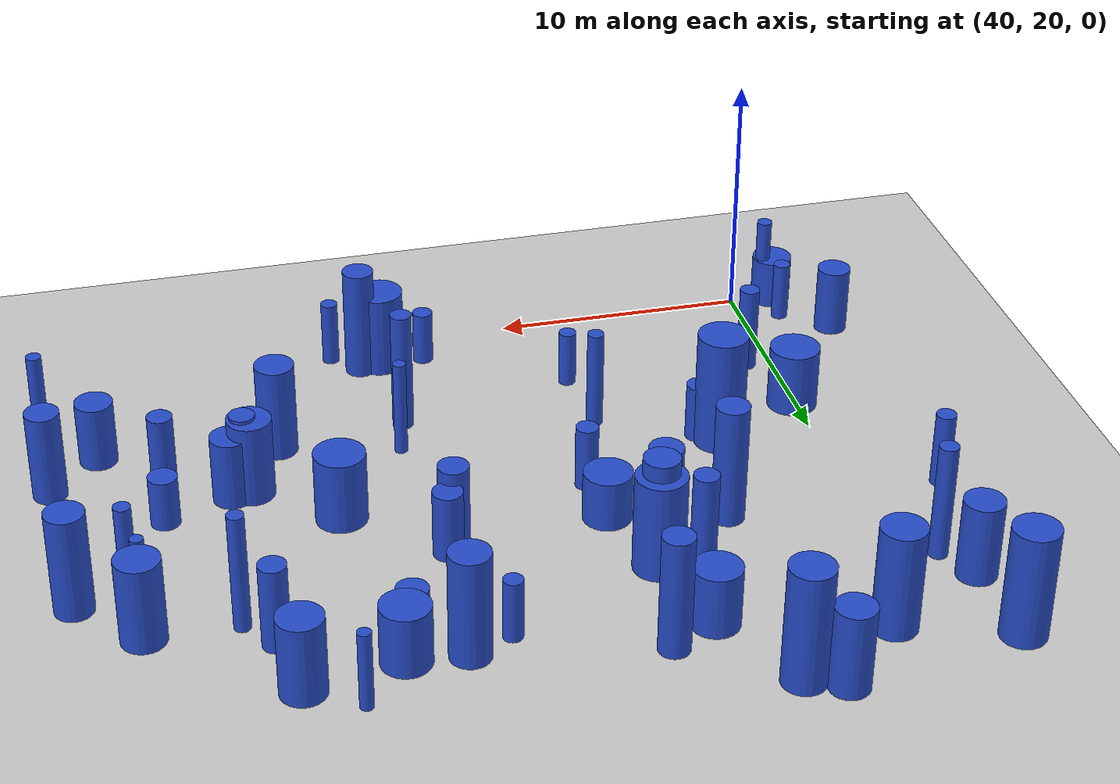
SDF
<sdf version="1.7">
 <world name="default">
  <model name="ground_plane">
   <static>1</static>
   <link name="link">
    <collision name="collision">
     <geometry><plane><normal>0 0 1</normal><size>100 100</size></plane></geometry>
     <surface>
      <contact><collide_bitmask>65535</collide_bitmask></contact>
      <friction><ode><mu>100</mu><mu2>50</mu2></ode></friction>
     </surface>
    </collision>
    <visual name="visual">
     <cast_shadows>0</cast_shadows>
     <geometry><plane><normal>0 0 1</normal><size>100 100</size></plane></geometry>
     <material>
      <script><uri>file://media/materials/scripts/gazebo.material</uri><name>Gazebo/Grey</name></script>
     </material>
    </visual>
   </link>
  </model>
  <model name="2">
   <static>0</static>
   <link name="link">
    <inertial>
     <mass>2</mass>
     <inertia><ixx>1.55938</ixx><ixy>0</ixy><ixz>0</ixz><iyy>1.55938</iyy><iyz>0</iyz><izz>0.44286</izz></inertia>
    </inertial>
    <collision name="collision">
     <geometry><cylinder><length>2.83332</length><radius>0.665477</radius></cylinder></geometry>
     <surface><contact><collide_without_contact>1</collide_without_contact></contact></surface>
    </collision>
    <visual name="visual">
     <geometry><cylinder><length>2.83332</length><radius>0.665477</radius></cylinder></geometry>
     <material>
      <script><uri>file://media/materials/scripts/gazebo.material</uri><name>Gazebo/Blue</name></script>
     </material>
    </visual>
    <gravity>0</gravity>
   </link>
   <pose>36.5984 22.9657 1.41666 0 -0 0</pose>
  </model>
  <model name="7">
   <static>0</static>
   <link name="link">
    <inertial>
     <mass>2</mass>
     <inertia><ixx>4.24686</ixx><ixy>0</ixy><ixz>0</ixz><iyy>4.24686</iyy><iyz>0</iyz><izz>0.171142</izz></inertia>
    </inertial>
    <collision name="collision">
     <geometry><cylinder><length>4.99677</length><radius>0.413693</radius></cylinder></geometry>
     <surface><contact><collide_without_contact>1</collide_without_contact></contact></surface>
    </collision>
    <visual name="visual">
     <geometry><cylinder><length>4.99677</length><radius>0.413693</radius></cylinder></geometry>
     <material>
      <script><uri>file://media/materials/scripts/gazebo.material</uri><name>Gazebo/Blue</name></script>
     </material>
    </visual>
    <gravity>0</gravity>
   </link>
   <pose>55.5201 26.1639 2.49839 0 -0 0</pose>
  </model>
  <model name="24">
   <static>0</static>
   <link name="link">
    <inertial>
     <mass>2</mass>
     <inertia><ixx>2.07239</ixx><ixy>0</ixy><ixz>0</ixz><iyy>2.07239</iyy><iyz>0</iyz><izz>0.74145</izz></inertia>
    </inertial>
    <collision name="collision">
     <geometry><cylinder><length>3.19531</length><radius>0.861075</radius></cylinder></geometry>
     <surface><contact><collide_without_contact>1</collide_without_contact></contact></surface>
    </collision>
    <visual name="visual">
     <geometry><cylinder><length>3.19531</length><radius>0.861075</radius></cylinder></geometry>
     <material>
      <script><uri>file://media/materials/scripts/gazebo.material</uri><name>Gazebo/Blue</name></script>
     </material>
    </visual>
    <gravity>0</gravity>
   </link>
   <pose>61.9875 41.5797 1.59766 0 -0 0</pose>
  </model>
  <model name="30">
   <static>0</static>
   <link name="link">
    <inertial>
     <mass>2</mass>
     <inertia>
      <ixx>0.948335</ixx>
      <ixy>0</ixy>
      <ixz>0</ixz>
      <iyy>0.948335</iyy>
      <iyz>0</iyz>
      <izz>0.118719</izz>
     </inertia>
    </inertial>
    <collision name="collision">
     <geometry><cylinder><length>2.30951</length><radius>0.344557</radius></cylinder></geometry>
     <surface><contact><collide_without_contact>1</collide_without_contact></contact></surface>
    </collision>
    <visual name="visual">
     <geometry><cylinder><length>2.30951</length><radius>0.344557</radius></cylinder></geometry>
     <material>
      <script><uri>file://media/materials/scripts/gazebo.material</uri><name>Gazebo/Blue</name></script>
     </material>
    </visual>
    <gravity>0</gravity>
   </link>
   <pose>48.4428 24.59 1.15476 0 -0 0</pose>
  </model>
  <model name="37">
   <static>0</static>
   <link name="link">
    <inertial>
     <mass>2</mass>
     <inertia><ixx>3.10226</ixx><ixy>0</ixy><ixz>0</ixz><iyy>3.10226</iyy><iyz>0</iyz><izz>0.951705</izz></inertia>
    </inertial>
    <collision name="collision">
     <geometry><cylinder><length>3.96969</length><radius>0.975554</radius></cylinder></geometry>
     <surface><contact><collide_without_contact>1</collide_without_contact></contact></surface>
    </collision>
    <visual name="visual">
     <geometry><cylinder><length>3.96969</length><radius>0.975554</radius></cylinder></geometry>
     <material>
      <script><uri>file://media/materials/scripts/gazebo.material</uri><name>Gazebo/Blue</name></script>
     </material>
    </visual>
    <gravity>0</gravity>
   </link>
   <pose>48.3761 37.5513 1.98485 0 -0 0</pose>
  </model>
  <model name="39">
   <static>0</static>
   <link name="link">
    <inertial>
     <mass>2</mass>
     <inertia>
      <ixx>0.895212</ixx>
      <ixy>0</ixy>
      <ixz>0</ixz>
      <iyy>0.895212</iyy>
      <iyz>0</iyz>
      <izz>0.162805</izz>
     </inertia>
    </inertial>
    <collision name="collision">
     <geometry><cylinder><length>2.20972</length><radius>0.403491</radius></cylinder></geometry>
     <surface><contact><collide_without_contact>1</collide_without_contact></contact></surface>
    </collision>
    <visual name="visual">
     <geometry><cylinder><length>2.20972</length><radius>0.403491</radius></cylinder></geometry>
     <material>
      <script><uri>file://media/materials/scripts/gazebo.material</uri><name>Gazebo/Blue</name></script>
     </material>
    </visual>
    <gravity>0</gravity>
   </link>
   <pose>53.771 21.5278 1.10486 0 -0 0</pose>
  </model>
  <model name="46">
   <static>0</static>
   <link name="link">
    <inertial>
     <mass>2</mass>
     <inertia><ixx>2.80292</ixx><ixy>0</ixy><ixz>0</ixz><iyy>2.80292</iyy><iyz>0</iyz><izz>0.10545</izz></inertia>
    </inertial>
    <collision name="collision">
     <geometry><cylinder><length>4.06216</length><radius>0.32473</radius></cylinder></geometry>
     <surface><contact><collide_without_contact>1</collide_without_contact></contact></surface>
    </collision>
    <visual name="visual">
     <geometry><cylinder><length>4.06216</length><radius>0.32473</radius></cylinder></geometry>
     <material>
      <script><uri>file://media/materials/scripts/gazebo.material</uri><name>Gazebo/Blue</name></script>
     </material>
    </visual>
    <gravity>0</gravity>
   </link>
   <pose>48.1564 27.7727 2.03108 0 -0 0</pose>
  </model>
  <model name="47">
   <static>0</static>
   <link name="link">
    <inertial>
     <mass>2</mass>
     <inertia><ixx>1.90834</ixx><ixy>0</ixy><ixz>0</ixz><iyy>1.90834</iyy><iyz>0</iyz><izz>0.988377</izz></inertia>
    </inertial>
    <collision name="collision">
     <geometry><cylinder><length>2.91289</length><radius>0.994171</radius></cylinder></geometry>
     <surface><contact><collide_without_contact>1</collide_without_contact></contact></surface>
    </collision>
    <visual name="visual">
     <geometry><cylinder><length>2.91289</length><radius>0.994171</radius></cylinder></geometry>
     <material>
      <script><uri>file://media/materials/scripts/gazebo.material</uri><name>Gazebo/Blue</name></script>
     </material>
    </visual>
    <gravity>0</gravity>
   </link>
   <pose>58.9852 31.9274 1.45644 0 -0 0</pose>
  </model>
  <model name="55">
   <static>0</static>
   <link name="link">
    <inertial>
     <mass>2</mass>
     <inertia><ixx>1.46159</ixx><ixy>0</ixy><ixz>0</ixz><iyy>1.46159</iyy><iyz>0</iyz><izz>0.545159</izz></inertia>
    </inertial>
    <collision name="collision">
     <geometry><cylinder><length>2.67097</length><radius>0.738349</radius></cylinder></geometry>
     <surface><contact><collide_without_contact>1</collide_without_contact></contact></surface>
    </collision>
    <visual name="visual">
     <geometry><cylinder><length>2.67097</length><radius>0.738349</radius></cylinder></geometry>
     <material>
      <script><uri>file://media/materials/scripts/gazebo.material</uri><name>Gazebo/Blue</name></script>
     </material>
    </visual>
    <gravity>0</gravity>
   </link>
   <pose>67.4319 25.9617 1.33548 0 -0 0</pose>
  </model>
  <model name="62">
   <static>0</static>
   <link name="link">
    <inertial>
     <mass>2</mass>
     <inertia><ixx>2.04969</ixx><ixy>0</ixy><ixz>0</ixz><iyy>2.04969</iyy><iyz>0</iyz><izz>0.595965</izz></inertia>
    </inertial>
    <collision name="collision">
     <geometry><cylinder><length>3.24195</length><radius>0.771988</radius></cylinder></geometry>
     <surface><contact><collide_without_contact>1</collide_without_contact></contact></surface>
    </collision>
    <visual name="visual">
     <geometry><cylinder><length>3.24195</length><radius>0.771988</radius></cylinder></geometry>
     <material>
      <script><uri>file://media/materials/scripts/gazebo.material</uri><name>Gazebo/Blue</name></script>
     </material>
    </visual>
    <gravity>0</gravity>
   </link>
   <pose>37.3876 40.6543 1.62098 0 -0 0</pose>
  </model>
  <model name="63">
   <static>0</static>
   <link name="link">
    <inertial>
     <mass>2</mass>
     <inertia><ixx>1.61709</ixx><ixy>0</ixy><ixz>0</ixz><iyy>1.61709</iyy><iyz>0</iyz><izz>0.150907</izz></inertia>
    </inertial>
    <collision name="collision">
     <geometry><cylinder><length>3.04135</length><radius>0.388467</radius></cylinder></geometry>
     <surface><contact><collide_without_contact>1</collide_without_contact></contact></surface>
    </collision>
    <visual name="visual">
     <geometry><cylinder><length>3.04135</length><radius>0.388467</radius></cylinder></geometry>
     <material>
      <script><uri>file://media/materials/scripts/gazebo.material</uri><name>Gazebo/Blue</name></script>
     </material>
    </visual>
    <gravity>0</gravity>
   </link>
   <pose>36.4442 34.8195 1.52067 0 -0 0</pose>
  </model>
  <model name="77">
   <static>0</static>
   <link name="link">
    <inertial>
     <mass>2</mass>
     <inertia><ixx>3.70884</ixx><ixy>0</ixy><ixz>0</ixz><iyy>3.70884</iyy><iyz>0</iyz><izz>0.383531</izz></inertia>
    </inertial>
    <collision name="collision">
     <geometry><cylinder><length>4.59374</length><radius>0.619299</radius></cylinder></geometry>
     <surface><contact><collide_without_contact>1</collide_without_contact></contact></surface>
    </collision>
    <visual name="visual">
     <geometry><cylinder><length>4.59374</length><radius>0.619299</radius></cylinder></geometry>
     <material>
      <script><uri>file://media/materials/scripts/gazebo.material</uri><name>Gazebo/Blue</name></script>
     </material>
    </visual>
    <gravity>0</gravity>
   </link>
   <pose>56.4048 21.7296 2.29687 0 -0 0</pose>
  </model>
  <model name="114">
   <static>0</static>
   <link name="link">
    <inertial>
     <mass>2</mass>
     <inertia><ixx>1.56107</ixx><ixy>0</ixy><ixz>0</ixz><iyy>1.56107</iyy><iyz>0</iyz><izz>0.543529</izz></inertia>
    </inertial>
    <collision name="collision">
     <geometry><cylinder><length>2.78133</length><radius>0.737244</radius></cylinder></geometry>
     <surface><contact><collide_without_contact>1</collide_without_contact></contact></surface>
    </collision>
    <visual name="visual">
     <geometry><cylinder><length>2.78133</length><radius>0.737244</radius></cylinder></geometry>
     <material>
      <script><uri>file://media/materials/scripts/gazebo.material</uri><name>Gazebo/Blue</name></script>
     </material>
    </visual>
    <gravity>0</gravity>
   </link>
   <pose>62.7632 29.7085 1.39067 0 -0 0</pose>
  </model>
  <model name="116">
   <static>0</static>
   <link name="link">
    <inertial>
     <mass>2</mass>
     <inertia>
      <ixx>2.61659</ixx>
      <ixy>0</ixy>
      <ixz>0</ixz>
      <iyy>2.61659</iyy>
      <iyz>0</iyz>
      <izz>0.0647721</izz>
     </inertia>
    </inertial>
    <collision name="collision">
     <geometry><cylinder><length>3.93767</length><radius>0.254504</radius></cylinder></geometry>
     <surface><contact><collide_without_contact>1</collide_without_contact></contact></surface>
    </collision>
    <visual name="visual">
     <geometry><cylinder><length>3.93767</length><radius>0.254504</radius></cylinder></geometry>
     <material>
      <script><uri>file://media/materials/scripts/gazebo.material</uri><name>Gazebo/Blue</name></script>
     </material>
    </visual>
    <gravity>0</gravity>
   </link>
   <pose>55.9519 27.9664 1.96883 0 -0 0</pose>
  </model>
  <model name="131">
   <static>0</static>
   <link name="link">
    <inertial>
     <mass>2</mass>
     <inertia><ixx>3.80125</ixx><ixy>0</ixy><ixz>0</ixz><iyy>3.80125</iyy><iyz>0</iyz><izz>0.478681</izz></inertia>
    </inertial>
    <collision name="collision">
     <geometry><cylinder><length>4.62293</length><radius>0.691868</radius></cylinder></geometry>
     <surface><contact><collide_without_contact>1</collide_without_contact></contact></surface>
    </collision>
    <visual name="visual">
     <geometry><cylinder><length>4.62293</length><radius>0.691868</radius></cylinder></geometry>
     <material>
      <script><uri>file://media/materials/scripts/gazebo.material</uri><name>Gazebo/Blue</name></script>
     </material>
    </visual>
    <gravity>0</gravity>
   </link>
   <pose>48.3391 37.3994 2.31146 0 -0 0</pose>
  </model>
  <model name="152">
   <static>0</static>
   <link name="link">
    <inertial>
     <mass>2</mass>
     <inertia><ixx>2.1005</ixx><ixy>0</ixy><ixz>0</ixz><iyy>2.1005</iyy><iyz>0</iyz><izz>0.270482</izz></inertia>
    </inertial>
    <collision name="collision">
     <geometry><cylinder><length>3.43388</length><radius>0.520079</radius></cylinder></geometry>
     <surface><contact><collide_without_contact>1</collide_without_contact></contact></surface>
    </collision>
    <visual name="visual">
     <geometry><cylinder><length>3.43388</length><radius>0.520079</radius></cylinder></geometry>
     <material>
      <script><uri>file://media/materials/scripts/gazebo.material</uri><name>Gazebo/Blue</name></script>
     </material>
    </visual>
    <gravity>0</gravity>
   </link>
   <pose>62.487 38.8492 1.71694 0 -0 0</pose>
  </model>
  <model name="157">
   <static>0</static>
   <link name="link">
    <inertial>
     <mass>2</mass>
     <inertia><ixx>1.12934</ixx><ixy>0</ixy><ixz>0</ixz><iyy>1.12934</iyy><iyz>0</iyz><izz>0.888814</izz></inertia>
    </inertial>
    <collision name="collision">
     <geometry><cylinder><length>2.02722</length><radius>0.942769</radius></cylinder></geometry>
     <surface><contact><collide_without_contact>1</collide_without_contact></contact></surface>
    </collision>
    <visual name="visual">
     <geometry><cylinder><length>2.02722</length><radius>0.942769</radius></cylinder></geometry>
     <material>
      <script><uri>file://media/materials/scripts/gazebo.material</uri><name>Gazebo/Blue</name></script>
     </material>
    </visual>
    <gravity>0</gravity>
   </link>
   <pose>49.3617 34.1284 1.01361 0 -0 0</pose>
  </model>
  <model name="159">
   <static>0</static>
   <link name="link">
    <inertial>
     <mass>2</mass>
     <inertia><ixx>2.35713</ixx><ixy>0</ixy><ixz>0</ixz><iyy>2.35713</iyy><iyz>0</iyz><izz>0.716433</izz></inertia>
    </inertial>
    <collision name="collision">
     <geometry><cylinder><length>3.46316</length><radius>0.846423</radius></cylinder></geometry>
     <surface><contact><collide_without_contact>1</collide_without_contact></contact></surface>
    </collision>
    <visual name="visual">
     <geometry><cylinder><length>3.46316</length><radius>0.846423</radius></cylinder></geometry>
     <material>
      <script><uri>file://media/materials/scripts/gazebo.material</uri><name>Gazebo/Blue</name></script>
     </material>
    </visual>
    <gravity>0</gravity>
   </link>
   <pose>66.9113 37.5108 1.73158 0 -0 0</pose>
  </model>
  <model name="166">
   <static>0</static>
   <link name="link">
    <inertial>
     <mass>2</mass>
     <inertia><ixx>1.08491</ixx><ixy>0</ixy><ixz>0</ixz><iyy>1.08491</iyy><iyz>0</iyz><izz>0.115595</izz></inertia>
    </inertial>
    <collision name="collision">
     <geometry><cylinder><length>2.48247</length><radius>0.339992</radius></cylinder></geometry>
     <surface><contact><collide_without_contact>1</collide_without_contact></contact></surface>
    </collision>
    <visual name="visual">
     <geometry><cylinder><length>2.48247</length><radius>0.339992</radius></cylinder></geometry>
     <material>
      <script><uri>file://media/materials/scripts/gazebo.material</uri><name>Gazebo/Blue</name></script>
     </material>
    </visual>
    <gravity>0</gravity>
   </link>
   <pose>38.3691 21.5663 1.24124 0 -0 0</pose>
  </model>
  <model name="174">
   <static>0</static>
   <link name="link">
    <inertial>
     <mass>2</mass>
     <inertia><ixx>3.44519</ixx><ixy>0</ixy><ixz>0</ixz><iyy>3.44519</iyy><iyz>0</iyz><izz>0.726752</izz></inertia>
    </inertial>
    <collision name="collision">
     <geometry><cylinder><length>4.3001</length><radius>0.852498</radius></cylinder></geometry>
     <surface><contact><collide_without_contact>1</collide_without_contact></contact></surface>
    </collision>
    <visual name="visual">
     <geometry><cylinder><length>4.3001</length><radius>0.852498</radius></cylinder></geometry>
     <material>
      <script><uri>file://media/materials/scripts/gazebo.material</uri><name>Gazebo/Blue</name></script>
     </material>
    </visual>
    <gravity>0</gravity>
   </link>
   <pose>41.373 42.8842 2.15005 0 -0 0</pose>
  </model>
  <model name="220">
   <static>0</static>
   <link name="link">
    <inertial>
     <mass>2</mass>
     <inertia><ixx>3.82869</ixx><ixy>0</ixy><ixz>0</ixz><iyy>3.82869</iyy><iyz>0</iyz><izz>0.763171</izz></inertia>
    </inertial>
    <collision name="collision">
     <geometry><cylinder><length>4.54781</length><radius>0.873596</radius></cylinder></geometry>
     <surface><contact><collide_without_contact>1</collide_without_contact></contact></surface>
    </collision>
    <visual name="visual">
     <geometry><cylinder><length>4.54781</length><radius>0.873596</radius></cylinder></geometry>
     <material>
      <script><uri>file://media/materials/scripts/gazebo.material</uri><name>Gazebo/Blue</name></script>
     </material>
    </visual>
    <gravity>0</gravity>
   </link>
   <pose>37.1684 44.2988 2.27391 0 -0 0</pose>
  </model>
  <model name="246">
   <static>0</static>
   <link name="link">
    <inertial>
     <mass>2</mass>
     <inertia><ixx>1.64127</ixx><ixy>0</ixy><ixz>0</ixz><iyy>1.64127</iyy><iyz>0</iyz><izz>0.991313</izz></inertia>
    </inertial>
    <collision name="collision">
     <geometry><cylinder><length>2.62177</length><radius>0.995647</radius></cylinder></geometry>
     <surface><contact><collide_without_contact>1</collide_without_contact></contact></surface>
    </collision>
    <visual name="visual">
     <geometry><cylinder><length>2.62177</length><radius>0.995647</radius></cylinder></geometry>
     <material>
      <script><uri>file://media/materials/scripts/gazebo.material</uri><name>Gazebo/Blue</name></script>
     </material>
    </visual>
    <gravity>0</gravity>
   </link>
   <pose>40.1117 28.2503 1.31088 0 -0 0</pose>
  </model>
  <model name="258">
   <static>0</static>
   <link name="link">
    <inertial>
     <mass>2</mass>
     <inertia><ixx>1.84634</ixx><ixy>0</ixy><ixz>0</ixz><iyy>1.84634</iyy><iyz>0</iyz><izz>0.107284</izz></inertia>
    </inertial>
    <collision name="collision">
     <geometry><cylinder><length>3.27966</length><radius>0.327543</radius></cylinder></geometry>
     <surface><contact><collide_without_contact>1</collide_without_contact></contact></surface>
    </collision>
    <visual name="visual">
     <geometry><cylinder><length>3.27966</length><radius>0.327543</radius></cylinder></geometry>
     <material>
      <script><uri>file://media/materials/scripts/gazebo.material</uri><name>Gazebo/Blue</name></script>
     </material>
    </visual>
    <gravity>0</gravity>
   </link>
   <pose>67.0925 34.0365 1.63983 0 -0 0</pose>
  </model>
  <model name="265">
   <static>0</static>
   <link name="link">
    <inertial>
     <mass>2</mass>
     <inertia><ixx>1.9125</ixx><ixy>0</ixy><ixz>0</ixz><iyy>1.9125</iyy><iyz>0</iyz><izz>0.353968</izz></inertia>
    </inertial>
    <collision name="collision">
     <geometry><cylinder><length>3.22693</length><radius>0.594952</radius></cylinder></geometry>
     <surface><contact><collide_without_contact>1</collide_without_contact></contact></surface>
    </collision>
    <visual name="visual">
     <geometry><cylinder><length>3.22693</length><radius>0.594952</radius></cylinder></geometry>
     <material>
      <script><uri>file://media/materials/scripts/gazebo.material</uri><name>Gazebo/Blue</name></script>
     </material>
    </visual>
    <gravity>0</gravity>
   </link>
   <pose>55.1979 34.1644 1.61347 0 -0 0</pose>
  </model>
  <model name="278">
   <static>0</static>
   <link name="link">
    <inertial>
     <mass>2</mass>
     <inertia><ixx>1.67807</ixx><ixy>0</ixy><ixz>0</ixz><iyy>1.67807</iyy><iyz>0</iyz><izz>0.065135</izz></inertia>
    </inertial>
    <collision name="collision">
     <geometry><cylinder><length>3.14214</length><radius>0.255216</radius></cylinder></geometry>
     <surface><contact><collide_without_contact>1</collide_without_contact></contact></surface>
    </collision>
    <visual name="visual">
     <geometry><cylinder><length>3.14214</length><radius>0.255216</radius></cylinder></geometry>
     <material>
      <script><uri>file://media/materials/scripts/gazebo.material</uri><name>Gazebo/Blue</name></script>
     </material>
    </visual>
    <gravity>0</gravity>
   </link>
   <pose>60.056 42.8287 1.57107 0 -0 0</pose>
  </model>
  <model name="280">
   <static>0</static>
   <link name="link">
    <inertial>
     <mass>2</mass>
     <inertia><ixx>1.44169</ixx><ixy>0</ixy><ixz>0</ixz><iyy>1.44169</iyy><iyz>0</iyz><izz>0.8912</izz></inertia>
    </inertial>
    <collision name="collision">
     <geometry><cylinder><length>2.44469</length><radius>0.944034</radius></cylinder></geometry>
     <surface><contact><collide_without_contact>1</collide_without_contact></contact></surface>
    </collision>
    <visual name="visual">
     <geometry><cylinder><length>2.44469</length><radius>0.944034</radius></cylinder></geometry>
     <material>
      <script><uri>file://media/materials/scripts/gazebo.material</uri><name>Gazebo/Blue</name></script>
     </material>
    </visual>
    <gravity>0</gravity>
   </link>
   <pose>58.3047 40.8125 1.22235 0 -0 0</pose>
  </model>
  <model name="282">
   <static>0</static>
   <link name="link">
    <inertial>
     <mass>2</mass>
     <inertia><ixx>1.24321</ixx><ixy>0</ixy><ixz>0</ixz><iyy>1.24321</iyy><iyz>0</iyz><izz>0.112013</izz></inertia>
    </inertial>
    <collision name="collision">
     <geometry><cylinder><length>2.66893</length><radius>0.334683</radius></cylinder></geometry>
     <surface><contact><collide_without_contact>1</collide_without_contact></contact></surface>
    </collision>
    <visual name="visual">
     <geometry><cylinder><length>2.66893</length><radius>0.334683</radius></cylinder></geometry>
     <material>
      <script><uri>file://media/materials/scripts/gazebo.material</uri><name>Gazebo/Blue</name></script>
     </material>
    </visual>
    <gravity>0</gravity>
   </link>
   <pose>57.4706 20.7413 1.33447 0 -0 0</pose>
  </model>
  <model name="288">
   <static>0</static>
   <link name="link">
    <inertial>
     <mass>2</mass>
     <inertia><ixx>2.77788</ixx><ixy>0</ixy><ixz>0</ixz><iyy>2.77788</iyy><iyz>0</iyz><izz>0.593314</izz></inertia>
    </inertial>
    <collision name="collision">
     <geometry><cylinder><length>3.85841</length><radius>0.770269</radius></cylinder></geometry>
     <surface><contact><collide_without_contact>1</collide_without_contact></contact></surface>
    </collision>
    <visual name="visual">
     <geometry><cylinder><length>3.85841</length><radius>0.770269</radius></cylinder></geometry>
     <material>
      <script><uri>file://media/materials/scripts/gazebo.material</uri><name>Gazebo/Blue</name></script>
     </material>
    </visual>
    <gravity>0</gravity>
   </link>
   <pose>60.5818 26.8106 1.9292 0 -0 0</pose>
  </model>
  <model name="302">
   <static>0</static>
   <link name="link">
    <inertial>
     <mass>2</mass>
     <inertia><ixx>2.21734</ixx><ixy>0</ixy><ixz>0</ixz><iyy>2.21734</iyy><iyz>0</iyz><izz>0.241905</izz></inertia>
    </inertial>
    <collision name="collision">
     <geometry><cylinder><length>3.5466</length><radius>0.491838</radius></cylinder></geometry>
     <surface><contact><collide_without_contact>1</collide_without_contact></contact></surface>
    </collision>
    <visual name="visual">
     <geometry><cylinder><length>3.5466</length><radius>0.491838</radius></cylinder></geometry>
     <material>
      <script><uri>file://media/materials/scripts/gazebo.material</uri><name>Gazebo/Blue</name></script>
     </material>
    </visual>
    <gravity>0</gravity>
   </link>
   <pose>46.6158 37.2991 1.7733 0 -0 0</pose>
  </model>
  <model name="312">
   <static>0</static>
   <link name="link">
    <inertial>
     <mass>2</mass>
     <inertia><ixx>4.22418</ixx><ixy>0</ixy><ixz>0</ixz><iyy>4.22418</iyy><iyz>0</iyz><izz>0.707616</izz></inertia>
    </inertial>
    <collision name="collision">
     <geometry><cylinder><length>4.81895</length><radius>0.841199</radius></cylinder></geometry>
     <surface><contact><collide_without_contact>1</collide_without_contact></contact></surface>
    </collision>
    <visual name="visual">
     <geometry><cylinder><length>4.81895</length><radius>0.841199</radius></cylinder></geometry>
     <material>
      <script><uri>file://media/materials/scripts/gazebo.material</uri><name>Gazebo/Blue</name></script>
     </material>
    </visual>
    <gravity>0</gravity>
   </link>
   <pose>45.4162 44.9386 2.40947 0 -0 0</pose>
  </model>
  <model name="316">
   <static>0</static>
   <link name="link">
    <inertial>
     <mass>2</mass>
     <inertia><ixx>4.32323</ixx><ixy>0</ixy><ixz>0</ixz><iyy>4.32323</iyy><iyz>0</iyz><izz>0.972373</izz></inertia>
    </inertial>
    <collision name="collision">
     <geometry><cylinder><length>4.79815</length><radius>0.98609</radius></cylinder></geometry>
     <surface><contact><collide_without_contact>1</collide_without_contact></contact></surface>
    </collision>
    <visual name="visual">
     <geometry><cylinder><length>4.79815</length><radius>0.98609</radius></cylinder></geometry>
     <material>
      <script><uri>file://media/materials/scripts/gazebo.material</uri><name>Gazebo/Blue</name></script>
     </material>
    </visual>
    <gravity>0</gravity>
   </link>
   <pose>43.7754 30.1562 2.39907 0 -0 0</pose>
  </model>
  <model name="321">
   <static>0</static>
   <link name="link">
    <inertial>
     <mass>2</mass>
     <inertia><ixx>1.01781</ixx><ixy>0</ixy><ixz>0</ixz><iyy>1.01781</iyy><iyz>0</iyz><izz>0.361367</izz></inertia>
    </inertial>
    <collision name="collision">
     <geometry><cylinder><length>2.24115</length><radius>0.601138</radius></cylinder></geometry>
     <surface><contact><collide_without_contact>1</collide_without_contact></contact></surface>
    </collision>
    <visual name="visual">
     <geometry><cylinder><length>2.24115</length><radius>0.601138</radius></cylinder></geometry>
     <material>
      <script><uri>file://media/materials/scripts/gazebo.material</uri><name>Gazebo/Blue</name></script>
     </material>
    </visual>
    <gravity>0</gravity>
   </link>
   <pose>57.8386 39.6926 1.12058 0 -0 0</pose>
  </model>
  <model name="344">
   <static>0</static>
   <link name="link">
    <inertial>
     <mass>2</mass>
     <inertia><ixx>3.99117</ixx><ixy>0</ixy><ixz>0</ixz><iyy>3.99117</iyy><iyz>0</iyz><izz>0.353458</izz></inertia>
    </inertial>
    <collision name="collision">
     <geometry><cylinder><length>4.784</length><radius>0.594524</radius></cylinder></geometry>
     <surface><contact><collide_without_contact>1</collide_without_contact></contact></surface>
    </collision>
    <visual name="visual">
     <geometry><cylinder><length>4.784</length><radius>0.594524</radius></cylinder></geometry>
     <material>
      <script><uri>file://media/materials/scripts/gazebo.material</uri><name>Gazebo/Blue</name></script>
     </material>
    </visual>
    <gravity>0</gravity>
   </link>
   <pose>49.1924 42.2571 2.392 0 -0 0</pose>
  </model>
  <model name="347">
   <static>0</static>
   <link name="link">
    <inertial>
     <mass>2</mass>
     <inertia><ixx>1.0247</ixx><ixy>0</ixy><ixz>0</ixz><iyy>1.0247</iyy><iyz>0</iyz><izz>0.658867</izz></inertia>
    </inertial>
    <collision name="collision">
     <geometry><cylinder><length>2.04245</length><radius>0.811706</radius></cylinder></geometry>
     <surface><contact><collide_without_contact>1</collide_without_contact></contact></surface>
    </collision>
    <visual name="visual">
     <geometry><cylinder><length>2.04245</length><radius>0.811706</radius></cylinder></geometry>
     <material>
      <script><uri>file://media/materials/scripts/gazebo.material</uri><name>Gazebo/Blue</name></script>
     </material>
    </visual>
    <gravity>0</gravity>
   </link>
   <pose>38.2905 20.0711 1.02123 0 -0 0</pose>
  </model>
  <model name="351">
   <static>0</static>
   <link name="link">
    <inertial>
     <mass>2</mass>
     <inertia>
      <ixx>0.865694</ixx>
      <ixy>0</ixy>
      <ixz>0</ixz>
      <iyy>0.865694</iyy>
      <iyz>0</iyz>
      <izz>0.313935</izz>
     </inertia>
    </inertial>
    <collision name="collision">
     <geometry><cylinder><length>2.06212</length><radius>0.560299</radius></cylinder></geometry>
     <surface><contact><collide_without_contact>1</collide_without_contact></contact></surface>
    </collision>
    <visual name="visual">
     <geometry><cylinder><length>2.06212</length><radius>0.560299</radius></cylinder></geometry>
     <material>
      <script><uri>file://media/materials/scripts/gazebo.material</uri><name>Gazebo/Blue</name></script>
     </material>
    </visual>
    <gravity>0</gravity>
   </link>
   <pose>65.3837 30.6845 1.03106 0 -0 0</pose>
  </model>
  <model name="361">
   <static>0</static>
   <link name="link">
    <inertial>
     <mass>2</mass>
     <inertia><ixx>2.50698</ixx><ixy>0</ixy><ixz>0</ixz><iyy>2.50698</iyy><iyz>0</iyz><izz>0.43516</izz></inertia>
    </inertial>
    <collision name="collision">
     <geometry><cylinder><length>3.70626</length><radius>0.659666</radius></cylinder></geometry>
     <surface><contact><collide_without_contact>1</collide_without_contact></contact></surface>
    </collision>
    <visual name="visual">
     <geometry><cylinder><length>3.70626</length><radius>0.659666</radius></cylinder></geometry>
     <material>
      <script><uri>file://media/materials/scripts/gazebo.material</uri><name>Gazebo/Blue</name></script>
     </material>
    </visual>
    <gravity>0</gravity>
   </link>
   <pose>69.4175 27.8997 1.85313 0 -0 0</pose>
  </model>
  <model name="363">
   <static>0</static>
   <link name="link">
    <inertial>
     <mass>2</mass>
     <inertia><ixx>4.23782</ixx><ixy>0</ixy><ixz>0</ixz><iyy>4.23782</iyy><iyz>0</iyz><izz>0.408686</izz></inertia>
    </inertial>
    <collision name="collision">
     <geometry><cylinder><length>4.91944</length><radius>0.639286</radius></cylinder></geometry>
     <surface><contact><collide_without_contact>1</collide_without_contact></contact></surface>
    </collision>
    <visual name="visual">
     <geometry><cylinder><length>4.91944</length><radius>0.639286</radius></cylinder></geometry>
     <material>
      <script><uri>file://media/materials/scripts/gazebo.material</uri><name>Gazebo/Blue</name></script>
     </material>
    </visual>
    <gravity>0</gravity>
   </link>
   <pose>45.0139 35.1929 2.45972 0 -0 0</pose>
  </model>
  <model name="373">
   <static>0</static>
   <link name="link">
    <inertial>
     <mass>2</mass>
     <inertia><ixx>3.02724</ixx><ixy>0</ixy><ixz>0</ixz><iyy>3.02724</iyy><iyz>0</iyz><izz>0.429218</izz></inertia>
    </inertial>
    <collision name="collision">
     <geometry><cylinder><length>4.10802</length><radius>0.655147</radius></cylinder></geometry>
     <surface><contact><collide_without_contact>1</collide_without_contact></contact></surface>
    </collision>
    <visual name="visual">
     <geometry><cylinder><length>4.10802</length><radius>0.655147</radius></cylinder></geometry>
     <material>
      <script><uri>file://media/materials/scripts/gazebo.material</uri><name>Gazebo/Blue</name></script>
     </material>
    </visual>
    <gravity>0</gravity>
   </link>
   <pose>47.7642 36.0689 2.05401 0 -0 0</pose>
  </model>
  <model name="377">
   <static>0</static>
   <link name="link">
    <inertial>
     <mass>2</mass>
     <inertia><ixx>2.48896</ixx><ixy>0</ixy><ixz>0</ixz><iyy>2.48896</iyy><iyz>0</iyz><izz>0.23539</izz></inertia>
    </inertial>
    <collision name="collision">
     <geometry><cylinder><length>3.77195</length><radius>0.48517</radius></cylinder></geometry>
     <surface><contact><collide_without_contact>1</collide_without_contact></contact></surface>
    </collision>
    <visual name="visual">
     <geometry><cylinder><length>3.77195</length><radius>0.48517</radius></cylinder></geometry>
     <material>
      <script><uri>file://media/materials/scripts/gazebo.material</uri><name>Gazebo/Blue</name></script>
     </material>
    </visual>
    <gravity>0</gravity>
   </link>
   <pose>65.213 29.2852 1.88597 0 -0 0</pose>
  </model>
  <model name="394">
   <static>0</static>
   <link name="link">
    <inertial>
     <mass>2</mass>
     <inertia><ixx>2.37205</ixx><ixy>0</ixy><ixz>0</ixz><iyy>2.37205</iyy><iyz>0</iyz><izz>0.917567</izz></inertia>
    </inertial>
    <collision name="collision">
     <geometry><cylinder><length>3.38816</length><radius>0.957897</radius></cylinder></geometry>
     <surface><contact><collide_without_contact>1</collide_without_contact></contact></surface>
    </collision>
    <visual name="visual">
     <geometry><cylinder><length>3.38816</length><radius>0.957897</radius></cylinder></geometry>
     <material>
      <script><uri>file://media/materials/scripts/gazebo.material</uri><name>Gazebo/Blue</name></script>
     </material>
    </visual>
    <gravity>0</gravity>
   </link>
   <pose>55.5416 21.4582 1.69408 0 -0 0</pose>
  </model>
  <model name="406">
   <static>0</static>
   <link name="link">
    <inertial>
     <mass>2</mass>
     <inertia><ixx>3.76612</ixx><ixy>0</ixy><ixz>0</ixz><iyy>3.76612</iyy><iyz>0</iyz><izz>0.136975</izz></inertia>
    </inertial>
    <collision name="collision">
     <geometry><cylinder><length>4.71018</length><radius>0.370101</radius></cylinder></geometry>
     <surface><contact><collide_without_contact>1</collide_without_contact></contact></surface>
    </collision>
    <visual name="visual">
     <geometry><cylinder><length>4.71018</length><radius>0.370101</radius></cylinder></geometry>
     <material>
      <script><uri>file://media/materials/scripts/gazebo.material</uri><name>Gazebo/Blue</name></script>
     </material>
    </visual>
    <gravity>0</gravity>
   </link>
   <pose>38.2705 39.177 2.35509 0 -0 0</pose>
  </model>
  <model name="418">
   <static>0</static>
   <link name="link">
    <inertial>
     <mass>2</mass>
     <inertia><ixx>1.09132</ixx><ixy>0</ixy><ixz>0</ixz><iyy>1.09132</iyy><iyz>0</iyz><izz>0.139516</izz></inertia>
    </inertial>
    <collision name="collision">
     <geometry><cylinder><length>2.47576</length><radius>0.373519</radius></cylinder></geometry>
     <surface><contact><collide_without_contact>1</collide_without_contact></contact></surface>
    </collision>
    <visual name="visual">
     <geometry><cylinder><length>2.47576</length><radius>0.373519</radius></cylinder></geometry>
     <material>
      <script><uri>file://media/materials/scripts/gazebo.material</uri><name>Gazebo/Blue</name></script>
     </material>
    </visual>
    <gravity>0</gravity>
   </link>
   <pose>54.435 40.3022 1.23788 0 -0 0</pose>
  </model>
  <model name="428">
   <static>0</static>
   <link name="link">
    <inertial>
     <mass>2</mass>
     <inertia><ixx>1.41024</ixx><ixy>0</ixy><ixz>0</ixz><iyy>1.41024</iyy><iyz>0</iyz><izz>0.333058</izz></inertia>
    </inertial>
    <collision name="collision">
     <geometry><cylinder><length>2.73172</length><radius>0.577111</radius></cylinder></geometry>
     <surface><contact><collide_without_contact>1</collide_without_contact></contact></surface>
    </collision>
    <visual name="visual">
     <geometry><cylinder><length>2.73172</length><radius>0.577111</radius></cylinder></geometry>
     <material>
      <script><uri>file://media/materials/scripts/gazebo.material</uri><name>Gazebo/Blue</name></script>
     </material>
    </visual>
    <gravity>0</gravity>
   </link>
   <pose>55.5881 34.9984 1.36586 0 -0 0</pose>
  </model>
  <model name="431">
   <static>0</static>
   <link name="link">
    <inertial>
     <mass>2</mass>
     <inertia><ixx>3.87814</ixx><ixy>0</ixy><ixz>0</ixz><iyy>3.87814</iyy><iyz>0</iyz><izz>0.101995</izz></inertia>
    </inertial>
    <collision name="collision">
     <geometry><cylinder><length>4.79196</length><radius>0.319367</radius></cylinder></geometry>
     <surface><contact><collide_without_contact>1</collide_without_contact></contact></surface>
    </collision>
    <visual name="visual">
     <geometry><cylinder><length>4.79196</length><radius>0.319367</radius></cylinder></geometry>
     <material>
      <script><uri>file://media/materials/scripts/gazebo.material</uri><name>Gazebo/Blue</name></script>
     </material>
    </visual>
    <gravity>0</gravity>
   </link>
   <pose>63.4935 37.6101 2.39598 0 -0 0</pose>
  </model>
  <model name="435">
   <static>0</static>
   <link name="link">
    <inertial>
     <mass>2</mass>
     <inertia><ixx>2.2173</ixx><ixy>0</ixy><ixz>0</ixz><iyy>2.2173</iyy><iyz>0</iyz><izz>0.575399</izz></inertia>
    </inertial>
    <collision name="collision">
     <geometry><cylinder><length>3.40259</length><radius>0.758551</radius></cylinder></geometry>
     <surface><contact><collide_without_contact>1</collide_without_contact></contact></surface>
    </collision>
    <visual name="visual">
     <geometry><cylinder><length>3.40259</length><radius>0.758551</radius></cylinder></geometry>
     <material>
      <script><uri>file://media/materials/scripts/gazebo.material</uri><name>Gazebo/Blue</name></script>
     </material>
    </visual>
    <gravity>0</gravity>
   </link>
   <pose>44.0291 45.5775 1.70129 0 -0 0</pose>
  </model>
  <model name="436">
   <static>0</static>
   <link name="link">
    <inertial>
     <mass>2</mass>
     <inertia><ixx>1.04208</ixx><ixy>0</ixy><ixz>0</ixz><iyy>1.04208</iyy><iyz>0</iyz><izz>0.254822</izz></inertia>
    </inertial>
    <collision name="collision">
     <geometry><cylinder><length>2.34265</length><radius>0.504799</radius></cylinder></geometry>
     <surface><contact><collide_without_contact>1</collide_without_contact></contact></surface>
    </collision>
    <visual name="visual">
     <geometry><cylinder><length>2.34265</length><radius>0.504799</radius></cylinder></geometry>
     <material>
      <script><uri>file://media/materials/scripts/gazebo.material</uri><name>Gazebo/Blue</name></script>
     </material>
    </visual>
    <gravity>0</gravity>
   </link>
   <pose>44.4622 29.6172 1.17132 0 -0 0</pose>
  </model>
  <model name="440">
   <static>0</static>
   <link name="link">
    <inertial>
     <mass>2</mass>
     <inertia><ixx>3.20329</ixx><ixy>0</ixy><ixz>0</ixz><iyy>3.20329</iyy><iyz>0</iyz><izz>0.546773</izz></inertia>
    </inertial>
    <collision name="collision">
     <geometry><cylinder><length>4.19278</length><radius>0.739441</radius></cylinder></geometry>
     <surface><contact><collide_without_contact>1</collide_without_contact></contact></surface>
    </collision>
    <visual name="visual">
     <geometry><cylinder><length>4.19278</length><radius>0.739441</radius></cylinder></geometry>
     <material>
      <script><uri>file://media/materials/scripts/gazebo.material</uri><name>Gazebo/Blue</name></script>
     </material>
    </visual>
    <gravity>0</gravity>
   </link>
   <pose>69.1148 35.2427 2.09639 0 -0 0</pose>
  </model>
  <model name="441">
   <static>0</static>
   <link name="link">
    <inertial>
     <mass>2</mass>
     <inertia><ixx>3.51485</ixx><ixy>0</ixy><ixz>0</ixz><iyy>3.51485</iyy><iyz>0</iyz><izz>0.604603</izz></inertia>
    </inertial>
    <collision name="collision">
     <geometry><cylinder><length>4.39036</length><radius>0.777562</radius></cylinder></geometry>
     <surface><contact><collide_without_contact>1</collide_without_contact></contact></surface>
    </collision>
    <visual name="visual">
     <geometry><cylinder><length>4.39036</length><radius>0.777562</radius></cylinder></geometry>
     <material>
      <script><uri>file://media/materials/scripts/gazebo.material</uri><name>Gazebo/Blue</name></script>
     </material>
    </visual>
    <gravity>0</gravity>
   </link>
   <pose>56.0974 40.9939 2.19518 0 -0 0</pose>
  </model>
  <model name="450">
   <static>0</static>
   <link name="link">
    <inertial>
     <mass>2</mass>
     <inertia><ixx>1.22388</ixx><ixy>0</ixy><ixz>0</ixz><iyy>1.22388</iyy><iyz>0</iyz><izz>0.194752</izz></inertia>
    </inertial>
    <collision name="collision">
     <geometry><cylinder><length>2.59981</length><radius>0.441307</radius></cylinder></geometry>
     <surface><contact><collide_without_contact>1</collide_without_contact></contact></surface>
    </collision>
    <visual name="visual">
     <geometry><cylinder><length>2.59981</length><radius>0.441307</radius></cylinder></geometry>
     <material>
      <script><uri>file://media/materials/scripts/gazebo.material</uri><name>Gazebo/Blue</name></script>
     </material>
    </visual>
    <gravity>0</gravity>
   </link>
   <pose>49.5714 31.8898 1.29991 0 -0 0</pose>
  </model>
  <model name="456">
   <static>0</static>
   <link name="link">
    <inertial>
     <mass>2</mass>
     <inertia><ixx>2.2386</ixx><ixy>0</ixy><ixz>0</ixz><iyy>2.2386</iyy><iyz>0</iyz><izz>0.742922</izz></inertia>
    </inertial>
    <collision name="collision">
     <geometry><cylinder><length>3.34706</length><radius>0.861929</radius></cylinder></geometry>
     <surface><contact><collide_without_contact>1</collide_without_contact></contact></surface>
    </collision>
    <visual name="visual">
     <geometry><cylinder><length>3.34706</length><radius>0.861929</radius></cylinder></geometry>
     <material>
      <script><uri>file://media/materials/scripts/gazebo.material</uri><name>Gazebo/Blue</name></script>
     </material>
    </visual>
    <gravity>0</gravity>
   </link>
   <pose>61.9653 29.5445 1.67353 0 -0 0</pose>
  </model>
  <model name="467">
   <static>0</static>
   <link name="link">
    <inertial>
     <mass>2</mass>
     <inertia><ixx>2.15084</ixx><ixy>0</ixy><ixz>0</ixz><iyy>2.15084</iyy><iyz>0</iyz><izz>0.250421</izz></inertia>
    </inertial>
    <collision name="collision">
     <geometry><cylinder><length>3.48622</length><radius>0.500421</radius></cylinder></geometry>
     <surface><contact><collide_without_contact>1</collide_without_contact></contact></surface>
    </collision>
    <visual name="visual">
     <geometry><cylinder><length>3.48622</length><radius>0.500421</radius></cylinder></geometry>
     <material>
      <script><uri>file://media/materials/scripts/gazebo.material</uri><name>Gazebo/Blue</name></script>
     </material>
    </visual>
    <gravity>0</gravity>
   </link>
   <pose>62.202 29.4335 1.74311 0 -0 0</pose>
  </model>
  <model name="483">
   <static>0</static>
   <link name="link">
    <inertial>
     <mass>2</mass>
     <inertia>
      <ixx>1.73425</ixx>
      <ixy>0</ixy>
      <ixz>0</ixz>
      <iyy>1.73425</iyy>
      <iyz>0</iyz>
      <izz>0.0661018</izz>
     </inertia>
    </inertial>
    <collision name="collision">
     <geometry><cylinder><length>3.19487</length><radius>0.257103</radius></cylinder></geometry>
     <surface><contact><collide_without_contact>1</collide_without_contact></contact></surface>
    </collision>
    <visual name="visual">
     <geometry><cylinder><length>3.19487</length><radius>0.257103</radius></cylinder></geometry>
     <material>
      <script><uri>file://media/materials/scripts/gazebo.material</uri><name>Gazebo/Blue</name></script>
     </material>
    </visual>
    <gravity>0</gravity>
   </link>
   <pose>66.7824 35.9525 1.59743 0 -0 0</pose>
  </model>
  <model name="485">
   <static>0</static>
   <link name="link">
    <inertial>
     <mass>2</mass>
     <inertia>
      <ixx>2.41689</ixx>
      <ixy>0</ixy>
      <ixz>0</ixz>
      <iyy>2.41689</iyy>
      <iyz>0</iyz>
      <izz>0.0904638</izz>
     </inertia>
    </inertial>
    <collision name="collision">
     <geometry><cylinder><length>3.77226</length><radius>0.300772</radius></cylinder></geometry>
     <surface><contact><collide_without_contact>1</collide_without_contact></contact></surface>
    </collision>
    <visual name="visual">
     <geometry><cylinder><length>3.77226</length><radius>0.300772</radius></cylinder></geometry>
     <material>
      <script><uri>file://media/materials/scripts/gazebo.material</uri><name>Gazebo/Blue</name></script>
     </material>
    </visual>
    <gravity>0</gravity>
   </link>
   <pose>38.7262 20.1253 1.88613 0 -0 0</pose>
  </model>
  <model name="490">
   <static>0</static>
   <link name="link">
    <inertial>
     <mass>2</mass>
     <inertia>
      <ixx>2.43407</ixx>
      <ixy>0</ixy>
      <ixz>0</ixz>
      <iyy>2.43407</iyy>
      <iyz>0</iyz>
      <izz>0.0890668</izz>
     </inertia>
    </inertial>
    <collision name="collision">
     <geometry><cylinder><length>3.78645</length><radius>0.298441</radius></cylinder></geometry>
     <surface><contact><collide_without_contact>1</collide_without_contact></contact></surface>
    </collision>
    <visual name="visual">
     <geometry><cylinder><length>3.78645</length><radius>0.298441</radius></cylinder></geometry>
     <material>
      <script><uri>file://media/materials/scripts/gazebo.material</uri><name>Gazebo/Blue</name></script>
     </material>
    </visual>
    <gravity>0</gravity>
   </link>
   <pose>69.4397 23.986 1.89323 0 -0 0</pose>
  </model>
  <model name="492">
   <static>0</static>
   <link name="link">
    <inertial>
     <mass>2</mass>
     <inertia><ixx>1.44334</ixx><ixy>0</ixy><ixz>0</ixz><iyy>1.44334</iyy><iyz>0</iyz><izz>0.846379</izz></inertia>
    </inertial>
    <collision name="collision">
     <geometry><cylinder><length>2.47405</length><radius>0.919989</radius></cylinder></geometry>
     <surface><contact><collide_without_contact>1</collide_without_contact></contact></surface>
    </collision>
    <visual name="visual">
     <geometry><cylinder><length>2.47405</length><radius>0.919989</radius></cylinder></geometry>
     <material>
      <script><uri>file://media/materials/scripts/gazebo.material</uri><name>Gazebo/Blue</name></script>
     </material>
    </visual>
    <gravity>0</gravity>
   </link>
   <pose>47.3891 41.2162 1.23702 0 -0 0</pose>
  </model>
  <model name="499">
   <static>0</static>
   <link name="link">
    <inertial>
     <mass>2</mass>
     <inertia><ixx>2.18882</ixx><ixy>0</ixy><ixz>0</ixz><iyy>2.18882</iyy><iyz>0</iyz><izz>0.15567</izz></inertia>
    </inertial>
    <collision name="collision">
     <geometry><cylinder><length>3.55892</length><radius>0.39455</radius></cylinder></geometry>
     <surface><contact><collide_without_contact>1</collide_without_contact></contact></surface>
    </collision>
    <visual name="visual">
     <geometry><cylinder><length>3.55892</length><radius>0.39455</radius></cylinder></geometry>
     <material>
      <script><uri>file://media/materials/scripts/gazebo.material</uri><name>Gazebo/Blue</name></script>
     </material>
    </visual>
    <gravity>0</gravity>
   </link>
   <pose>40.9889 25.0636 1.77946 0 -0 0</pose>
  </model>
 </world>
</sdf>
